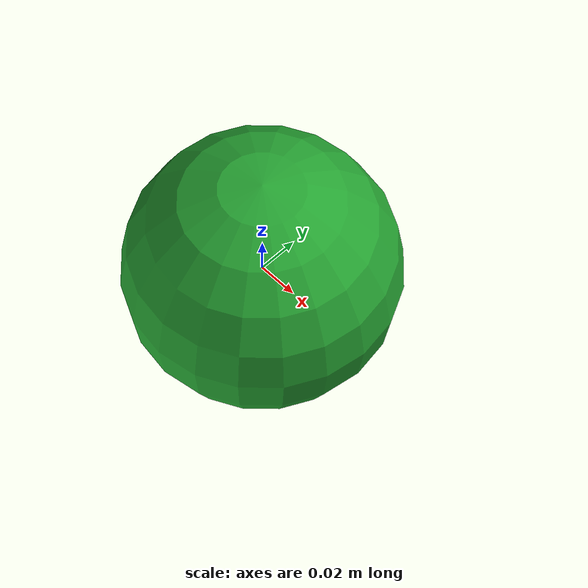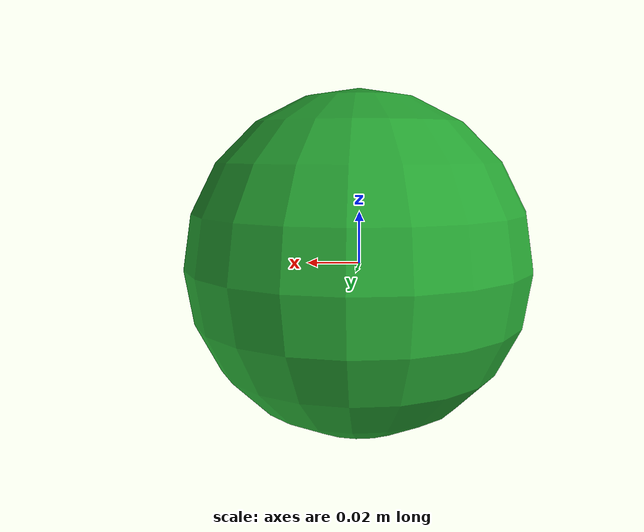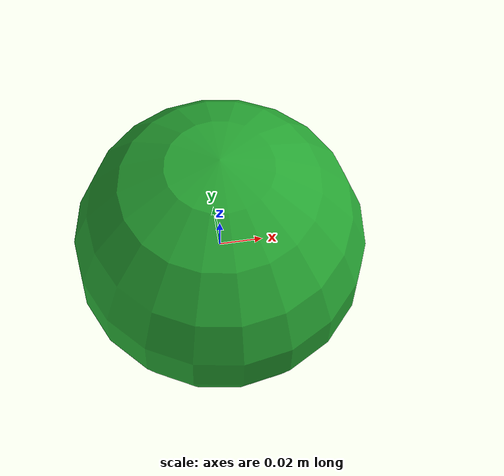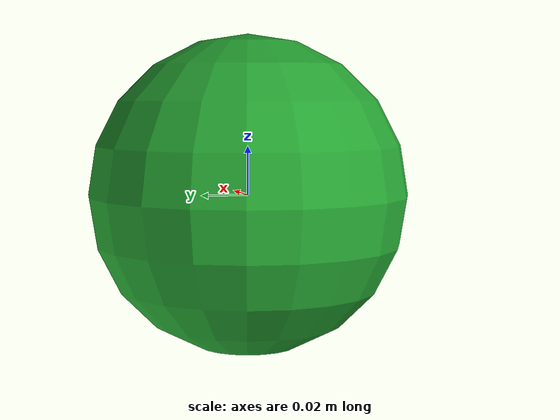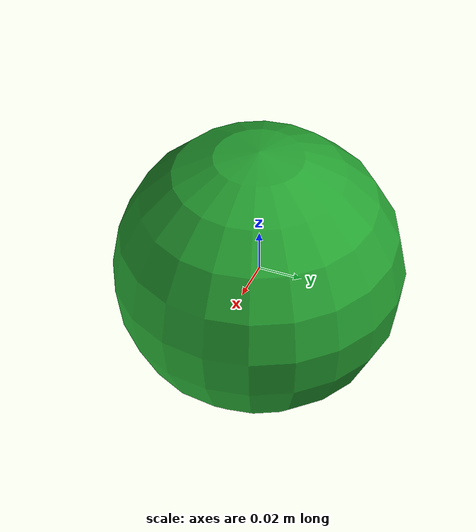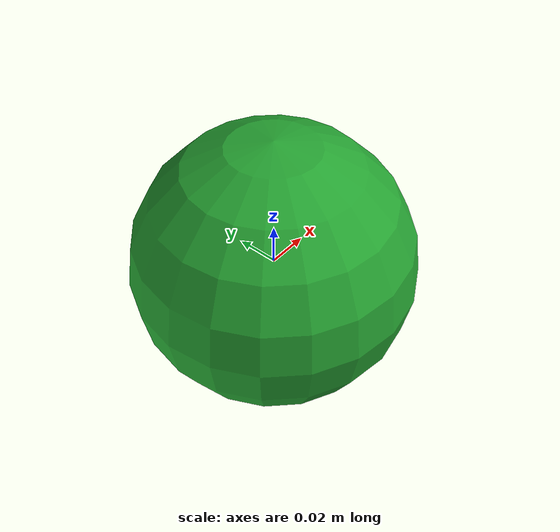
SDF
<?xml version='1.0'?>
<sdf version='1.7'>
  <model name='main_ball'>

    <link name='ball_link'>
      <inertial>
        <mass>0.057</mass>
        <inertia>
          <ixx>3.4E-5</ixx>
          <ixy>3.4E-5</ixy>
          <ixz>3.4E-5</ixz>
          <iyy>3.4E-5</iyy>
          <iyz>3.4E-5</iyz>
          <izz>3.4E-5</izz>
        </inertia>
        <pose>0 0 0 0 -0 0</pose>
      </inertial>
      <pose>-0 0 0 0 0 0</pose>
      <gravity>1</gravity>
      <self_collide>0</self_collide>
      <kinematic>0</kinematic>
      <enable_wind>0</enable_wind>

      <visual name='visual'>
        <pose>0 0 0 0 0 0</pose>
        <geometry>
          <sphere>
            <radius>0.066</radius>
          </sphere>
        </geometry>
        <material>
          <lighting>1</lighting>

          <script>
            <uri>file://media/materials/scripts/gazebo.material</uri>
            <name>Gazebo/Green</name>
          </script>

          <shader type='pixel'>
            <normal_map>__default__</normal_map>
          </shader>
          <ambient>0 1 0 1</ambient>
          <diffuse>0 1 0 1</diffuse>
          <specular>0 0 0 1</specular>
          <emissive>0 0 0 1</emissive>
        </material>
        <transparency>0</transparency>
        <cast_shadows>1</cast_shadows>
      </visual>

      <collision name='collision'>
        <laser_retro>0</laser_retro>
        <max_contacts>100</max_contacts>
        <pose>0 0 0 0 0 0</pose>
        <geometry>
          <sphere>
            <radius>0.033</radius>
          </sphere>
        </geometry>
        <surface>
          <friction>
            <ode>
              <mu>0.1</mu>
              <mu2>0.1</mu2>
              <fdir1>0 0 0</fdir1>
              <slip1>0.4</slip1>
              <slip2>0.4</slip2>
            </ode>
            <torsional>
              <coefficient>1</coefficient>
              <patch_radius>50</patch_radius>
              <surface_radius>0.0327</surface_radius>
              <use_patch_radius>true</use_patch_radius>
              <ode>
                <slip>0.3</slip>
              </ode>
            </torsional>
          </friction>
          <bounce>
            <restitution_coefficient>0</restitution_coefficient>
            <threshold>1</threshold>
          </bounce>
          <contact>
            <collide_without_contact>0</collide_without_contact>
            <collide_without_contact_bitmask>1</collide_without_contact_bitmask>
            <collide_bitmask>1</collide_bitmask>
            <poissons_ratio> 100 </poissons_ratio>
            <elastic_modulus> 100 </elastic_modulus>
            <ode>
              <soft_cfm>0</soft_cfm>
              <soft_erp>0.2</soft_erp>
              <kp>1000</kp>
              <kd>-0.88</kd>
              <max_vel>1000</max_vel>
              <min_depth>0.0001</min_depth>
            </ode>
          </contact>
        </surface>
      </collision>
    </link>
    <static>0</static>
    <allow_auto_disable>1</allow_auto_disable>

  </model>
</sdf>
